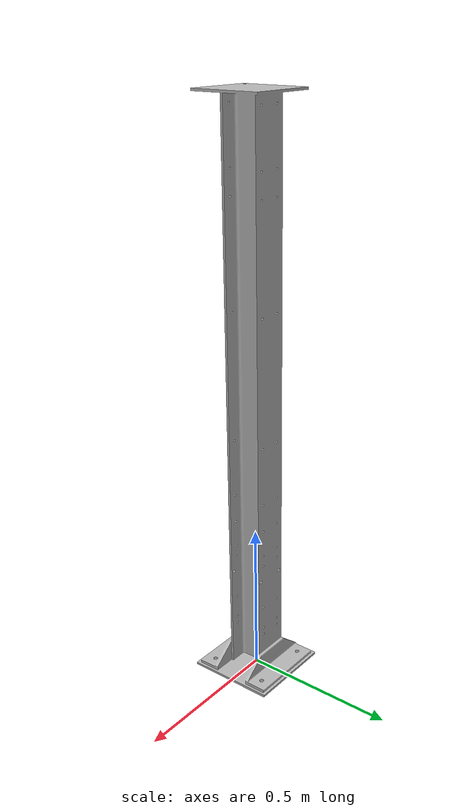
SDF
<?xml version='1.0'?>
<sdf version='1.4'>
  <model name="FGAG2002-1">
 <static>false</static>
 <link name="mesh_link">
	<inertial>
            <mass>100.0</mass>
 	</inertial>
        <visual name="visual">
        <geometry>
            <mesh><uri>model://FGAG2002-1/meshes/FGAG2002-1.stl</uri></mesh>
          </geometry>
        </visual>
        <collision name="collision">
          <geometry>
            <mesh><uri>model://FGAG2002-1/meshes/FGAG2002-1.stl</uri></mesh>
          </geometry>
        </collision>
      </link>
      <joint name='anchor' type='fixed'>
        <child>mesh_link</child>
        <parent>world</parent>
      </joint>
  </model>
</sdf>
